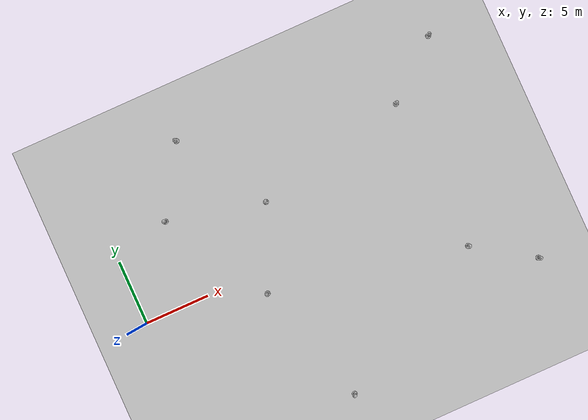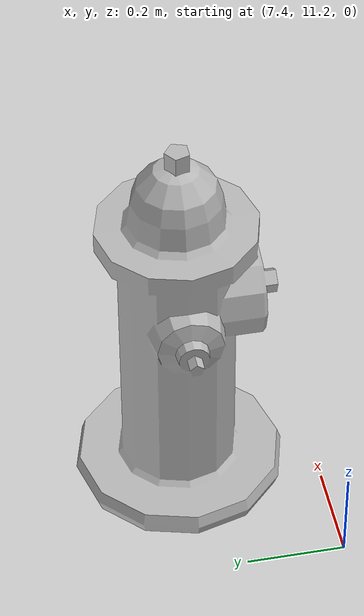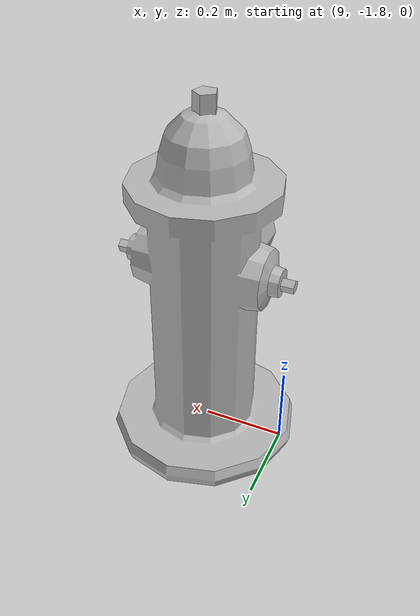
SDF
<sdf version="1.6">
 <world name="default">
  <light name="sun" type="directional">
   <pose>0 0 10 0 -0 0</pose>
   <diffuse>0.8 0.8 0.8 1</diffuse>
   <specular>0.2 0.2 0.2 1</specular>
   <attenuation>
    <range>1000</range>
    <constant>0.9</constant>
    <linear>0.01</linear>
    <quadratic>0.001</quadratic>
   </attenuation>
   <direction>-0.5 0.1 -0.9</direction>
  </light>
  <gravity>0 0 -9.8</gravity>
  <magnetic_field>6e-06 2.3e-05 -4.2e-05</magnetic_field>
  <atmosphere type="adiabatic"/>
  <physics name="default_physics" default="0" type="ode">
   <max_step_size>0.001</max_step_size>
   <real_time_factor>1</real_time_factor>
   <real_time_update_rate>1000</real_time_update_rate>
  </physics>
  <scene><ambient>0.4 0.4 0.4 1</ambient><background>0.7 0.7 0.7 1</background><shadows>1</shadows></scene>
  <audio><device>default</device></audio>
  <spherical_coordinates>
   <surface_model>EARTH_WGS84</surface_model>
   <latitude_deg>0</latitude_deg>
   <longitude_deg>0</longitude_deg>
   <elevation>0</elevation>
   <heading_deg>0</heading_deg>
  </spherical_coordinates>
  <model name="pista_1">
   <static>1</static>
   <link name="link">
    <collision name="collision">
     <geometry><plane><normal>0 0 1</normal><size>100 100</size></plane></geometry>
     <surface><friction><ode><mu>100</mu><mu2>50</mu2></ode></friction></surface>
    </collision>
    <visual name="visual">
     <cast_shadows>0</cast_shadows>
     <geometry><plane><normal>0 0 1</normal><size>100 100</size></plane></geometry>
     <material>
      <script>
       <uri>model://pista_1/materials/scripts</uri>
       <uri>model://pista_1/materials/textures</uri>
       <name>pista_1/Image</name>
      </script>
     </material>
    </visual>
   </link>
   <pose>15.1112 -0.406939 0 0 -0 0</pose>
  </model>
  <model name="fire_hydrant">
   <static>1</static>
   <link name="link">
    <collision name="collision">
     <geometry><mesh><uri>model://fire_hydrant/meshes/fire_hydrant.dae</uri></mesh></geometry>
    </collision>
    <visual name="visual">
     <geometry><mesh><uri>model://fire_hydrant/meshes/fire_hydrant.dae</uri></mesh></geometry>
    </visual>
   </link>
   <pose>9.14963 -1.66864 0 0 -0 0</pose>
  </model>
  <model name="fire_hydrant_0">
   <static>1</static>
   <link name="link">
    <collision name="collision">
     <geometry><mesh><uri>model://fire_hydrant/meshes/fire_hydrant.dae</uri></mesh></geometry>
    </collision>
    <visual name="visual">
     <geometry><mesh><uri>model://fire_hydrant/meshes/fire_hydrant.dae</uri></mesh></geometry>
    </visual>
   </link>
   <pose>11.9949 -11.119 0 0 -0 0</pose>
  </model>
  <model name="fire_hydrant_1">
   <static>1</static>
   <link name="link">
    <collision name="collision">
     <geometry><mesh><uri>model://fire_hydrant/meshes/fire_hydrant.dae</uri></mesh></geometry>
    </collision>
    <visual name="visual">
     <geometry><mesh><uri>model://fire_hydrant/meshes/fire_hydrant.dae</uri></mesh></geometry>
    </visual>
   </link>
   <pose>28.6507 -7.52447 0 0 -0 0</pose>
  </model>
  <model name="fire_hydrant_2">
   <static>1</static>
   <link name="link">
    <collision name="collision">
     <geometry><mesh><uri>model://fire_hydrant/meshes/fire_hydrant.dae</uri></mesh></geometry>
    </collision>
    <visual name="visual">
     <geometry><mesh><uri>model://fire_hydrant/meshes/fire_hydrant.dae</uri></mesh></geometry>
    </visual>
   </link>
   <pose>27.9835 10.9471 0 0 -0 0</pose>
  </model>
  <model name="fire_hydrant_3">
   <static>1</static>
   <link name="link">
    <collision name="collision">
     <geometry><mesh><uri>model://fire_hydrant/meshes/fire_hydrant.dae</uri></mesh></geometry>
    </collision>
    <visual name="visual">
     <geometry><mesh><uri>model://fire_hydrant/meshes/fire_hydrant.dae</uri></mesh></geometry>
    </visual>
   </link>
   <pose>7.6048 11.5024 0 0 -0 0</pose>
  </model>
  <model name="fire_hydrant_4">
   <static>1</static>
   <link name="link">
    <collision name="collision">
     <geometry><mesh><uri>model://fire_hydrant/meshes/fire_hydrant.dae</uri></mesh></geometry>
    </collision>
    <visual name="visual">
     <geometry><mesh><uri>model://fire_hydrant/meshes/fire_hydrant.dae</uri></mesh></geometry>
    </visual>
   </link>
   <pose>11.8354 4.60855 0 0 -0 0</pose>
  </model>
  <model name="fire_hydrant_5">
   <static>1</static>
   <link name="link">
    <collision name="collision">
     <geometry><mesh><uri>model://fire_hydrant/meshes/fire_hydrant.dae</uri></mesh></geometry>
    </collision>
    <visual name="visual">
     <geometry><mesh><uri>model://fire_hydrant/meshes/fire_hydrant.dae</uri></mesh></geometry>
    </visual>
   </link>
   <pose>23.6925 7.30269 0 0 -0 0</pose>
  </model>
  <model name="fire_hydrant_6">
   <static>1</static>
   <link name="link">
    <collision name="collision">
     <geometry><mesh><uri>model://fire_hydrant/meshes/fire_hydrant.dae</uri></mesh></geometry>
    </collision>
    <visual name="visual">
     <geometry><mesh><uri>model://fire_hydrant/meshes/fire_hydrant.dae</uri></mesh></geometry>
    </visual>
   </link>
   <pose>24.2339 -4.57007 0 0 -0 0</pose>
  </model>
  <model name="fire_hydrant_7">
   <static>1</static>
   <link name="link">
    <collision name="collision">
     <geometry><mesh><uri>model://fire_hydrant/meshes/fire_hydrant.dae</uri></mesh></geometry>
    </collision>
    <visual name="visual">
     <geometry><mesh><uri>model://fire_hydrant/meshes/fire_hydrant.dae</uri></mesh></geometry>
    </visual>
   </link>
   <pose>4.41326 6.34438 0 0 -0 0</pose>
  </model>
 </world>
</sdf>
